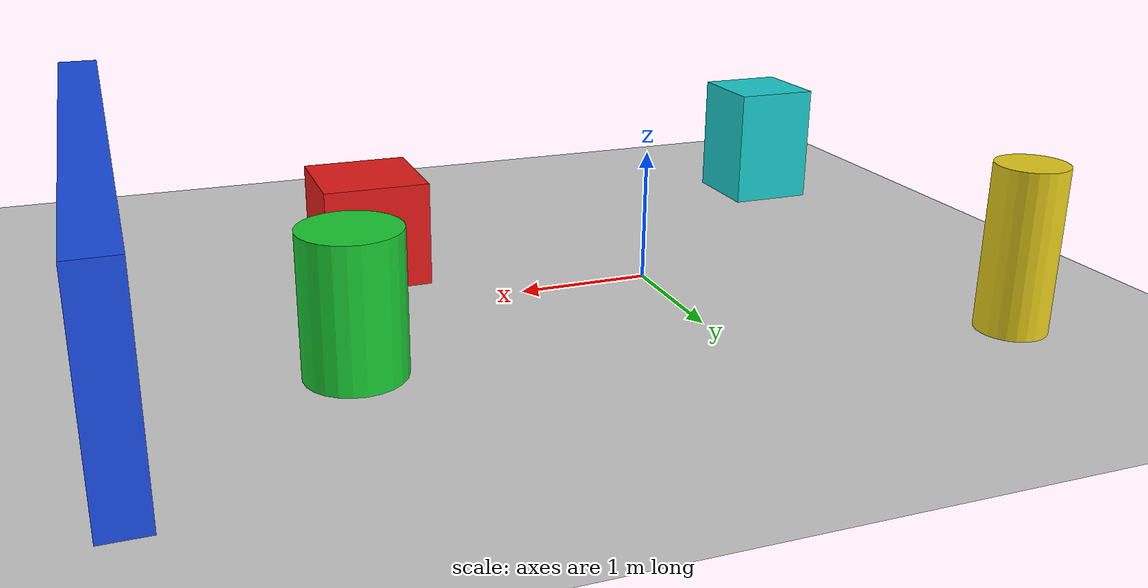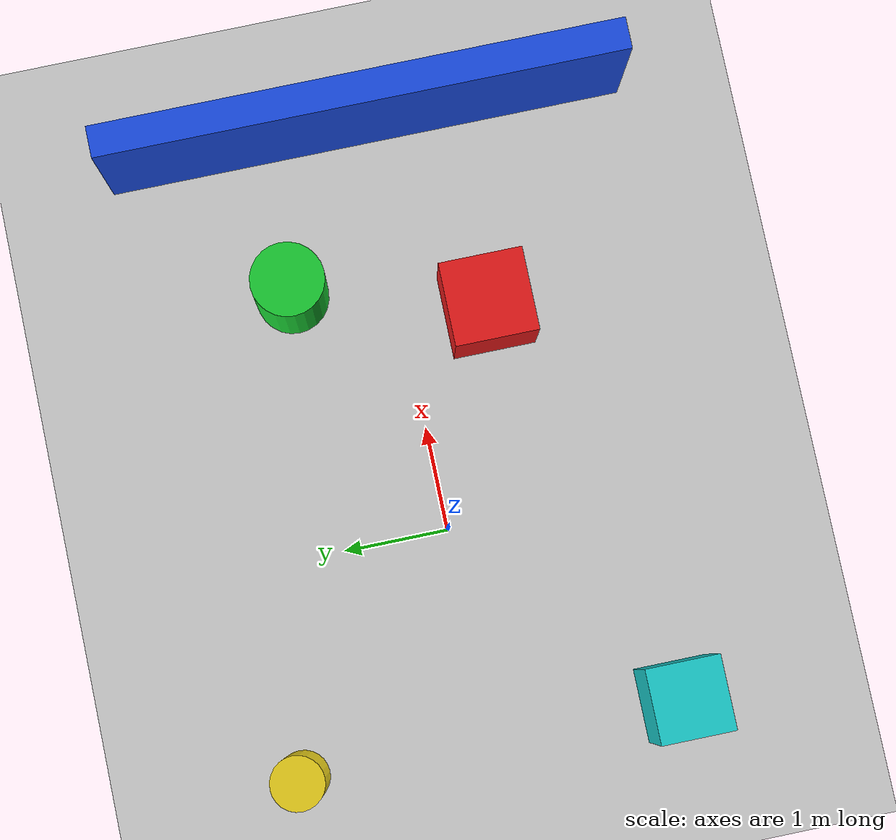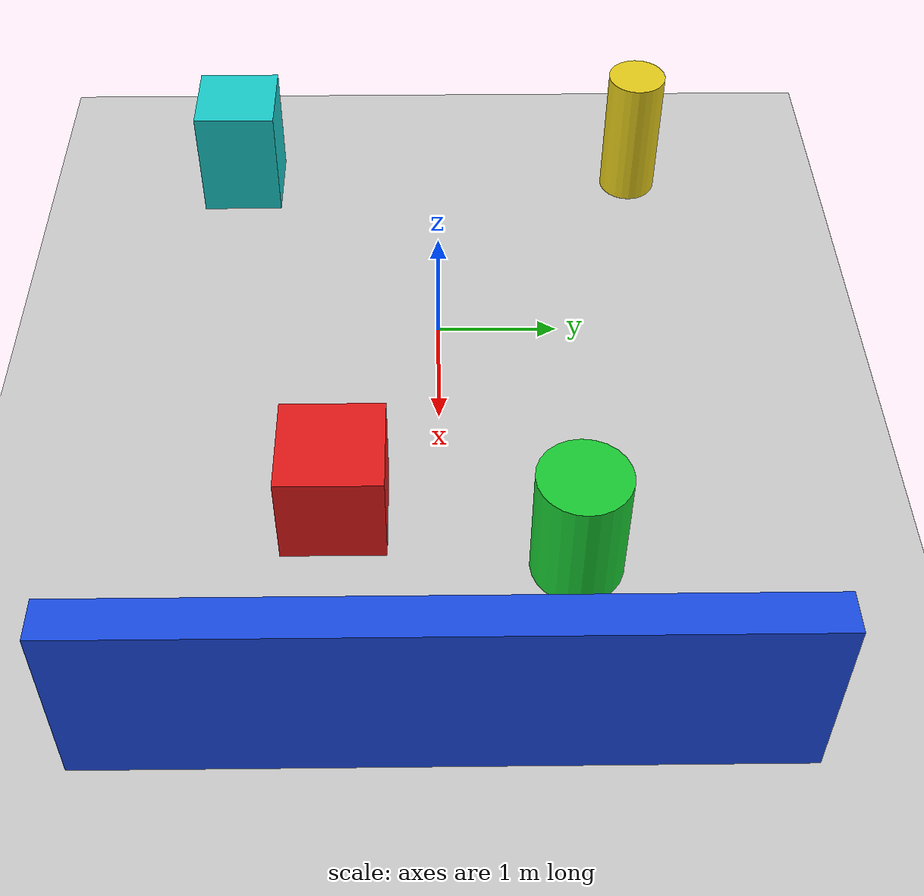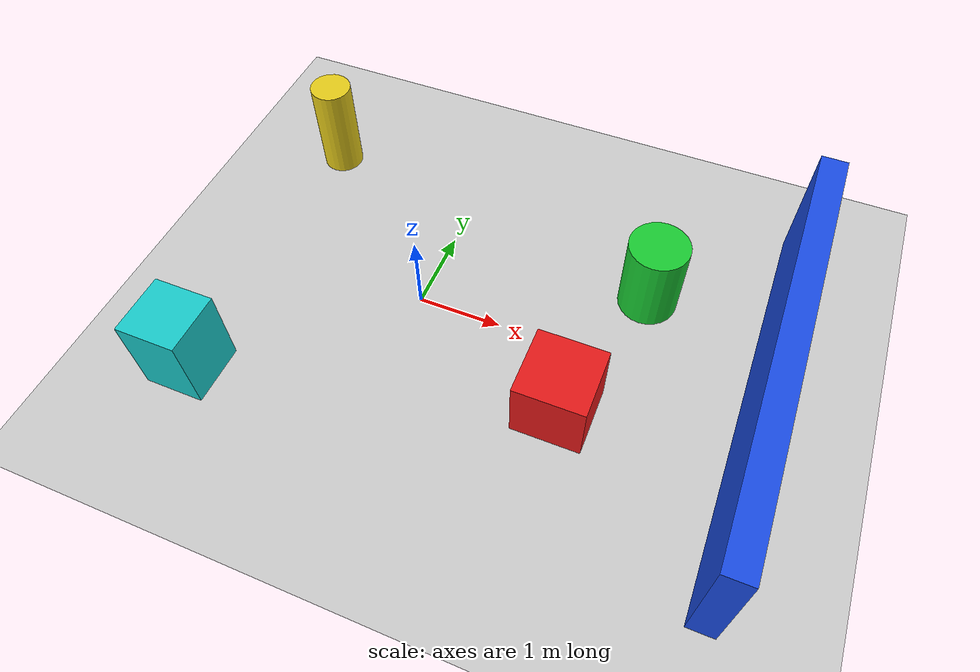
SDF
<?xml version="1.0" ?>
<sdf version="1.8">
  <world name="test_world">
    <!-- Physics -->
    <physics name="1ms" type="ignored">
      <max_step_size>0.001</max_step_size>
      <real_time_factor>1.0</real_time_factor>
    </physics>

    <!-- Essential System Plugins -->
    <plugin filename="gz-sim-physics-system" name="gz::sim::systems::Physics"/>
    <plugin filename="gz-sim-user-commands-system" name="gz::sim::systems::UserCommands"/>
    <plugin filename="gz-sim-scene-broadcaster-system" name="gz::sim::systems::SceneBroadcaster"/>
    <plugin filename="gz-sim-sensors-system" name="gz::sim::systems::Sensors">
      <render_engine>ogre2</render_engine>
    </plugin>

    <!-- Sunlight -->
    <light type="directional" name="sun">
      <cast_shadows>true</cast_shadows>
      <pose>0 0 10 0 0 0</pose>
      <diffuse>0.9 0.9 0.9 1</diffuse>
      <specular>0.3 0.3 0.3 1</specular>
      <direction>-0.5 0.1 -0.9</direction>
    </light>

    <!-- Ground Plane -->
    <model name="ground_plane">
      <static>true</static>
      <link name="link">
        <collision name="collision">
          <geometry>
            <plane>
              <normal>0 0 1</normal>
              <size>50 50</size>
            </plane>
          </geometry>
          <surface>
            <friction>
              <ode>
                <mu>1.2</mu>
                <mu2>1.2</mu2>
              </ode>
            </friction>
          </surface>
        </collision>
        <visual name="visual">
          <geometry>
            <plane>
              <normal>0 0 1</normal>
              <size>50 50</size>
            </plane>
          </geometry>
          <material>
            <ambient>0.8 0.8 0.8 1</ambient>
            <diffuse>0.8 0.8 0.8 1</diffuse>
            <specular>0.8 0.8 0.8 1</specular>
          </material>
        </visual>
      </link>
    </model>

    <!-- Red Box (Front Right) -->
    <model name="red_box">
      <static>true</static>
      <pose>2.0 -0.8 0.4 0 0 0</pose>
      <link name="link">
        <collision name="collision">
          <geometry><box><size>0.8 0.8 0.8</size></box></geometry>
        </collision>
        <visual name="visual">
          <geometry><box><size>0.8 0.8 0.8</size></box></geometry>
          <material>
            <ambient>0.9 0.1 0.1 1</ambient>
            <diffuse>0.9 0.1 0.1 1</diffuse>
          </material>
        </visual>
      </link>
    </model>

    <!-- Green Cylinder (Front Left) -->
    <model name="green_cylinder">
      <static>true</static>
      <pose>2.5 1.0 0.5 0 0 0</pose>
      <link name="link">
        <collision name="collision">
          <geometry><cylinder><radius>0.35</radius><length>1.0</length></cylinder></geometry>
        </collision>
        <visual name="visual">
          <geometry><cylinder><radius>0.35</radius><length>1.0</length></cylinder></geometry>
          <material>
            <ambient>0.1 0.8 0.2 1</ambient>
            <diffuse>0.1 0.8 0.2 1</diffuse>
          </material>
        </visual>
      </link>
    </model>

    <!-- Blue Front Wall -->
    <model name="blue_wall">
      <static>true</static>
      <pose>4.0 0 0.75 0 0 0</pose>
      <link name="link">
        <collision name="collision">
          <geometry><box><size>0.3 5.0 1.5</size></box></geometry>
        </collision>
        <visual name="visual">
          <geometry><box><size>0.3 5.0 1.5</size></box></geometry>
          <material>
            <ambient>0.1 0.3 0.9 1</ambient>
            <diffuse>0.1 0.3 0.9 1</diffuse>
          </material>
        </visual>
      </link>
    </model>

    <!-- Yellow Pillar (Rear Left) -->
    <model name="yellow_pillar">
      <static>true</static>
      <pose>-2.0 1.8 0.6 0 0 0</pose>
      <link name="link">
        <collision name="collision">
          <geometry><cylinder><radius>0.25</radius><length>1.2</length></cylinder></geometry>
        </collision>
        <visual name="visual">
          <geometry><cylinder><radius>0.25</radius><length>1.2</length></cylinder></geometry>
          <material>
            <ambient>0.9 0.8 0.1 1</ambient>
            <diffuse>0.9 0.8 0.1 1</diffuse>
          </material>
        </visual>
      </link>
    </model>

    <!-- Cyan Box (Rear Right) -->
    <model name="cyan_box">
      <static>true</static>
      <pose>-2.0 -1.8 0.5 0 0 0</pose>
      <link name="link">
        <collision name="collision">
          <geometry><box><size>0.7 0.7 1.0</size></box></geometry>
        </collision>
        <visual name="visual">
          <geometry><box><size>0.7 0.7 1.0</size></box></geometry>
          <material>
            <ambient>0.1 0.8 0.8 1</ambient>
            <diffuse>0.1 0.8 0.8 1</diffuse>
          </material>
        </visual>
      </link>
    </model>
  </world>
</sdf>
